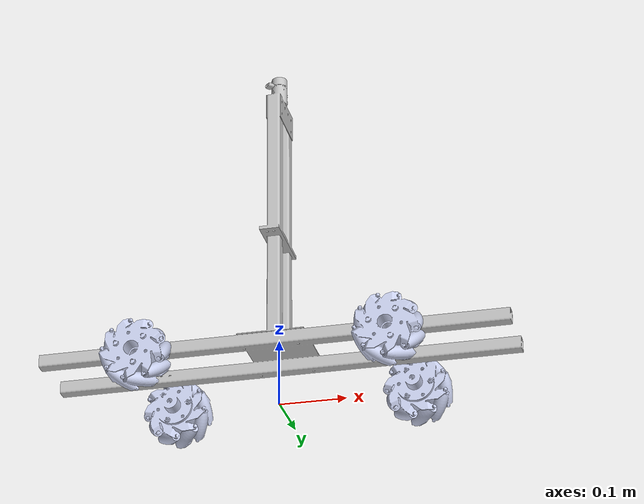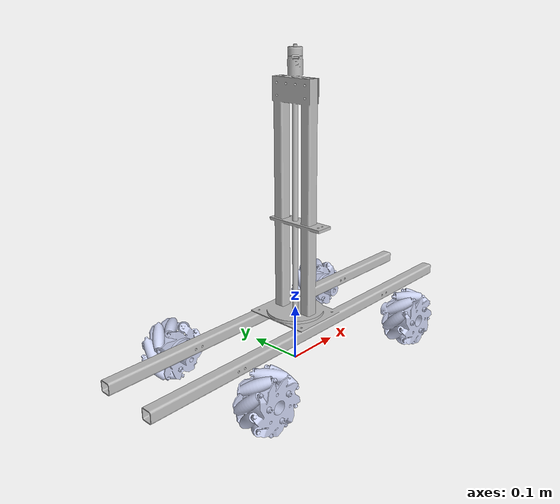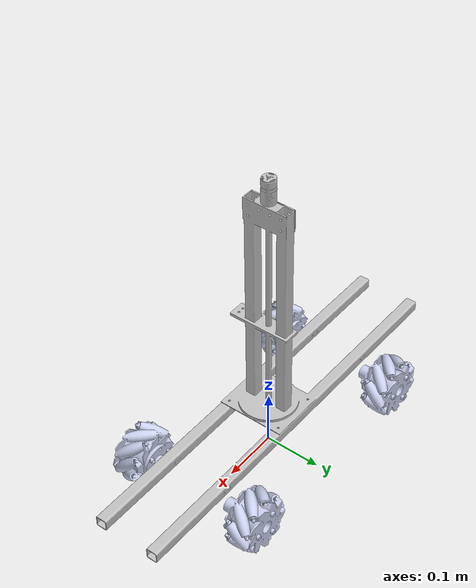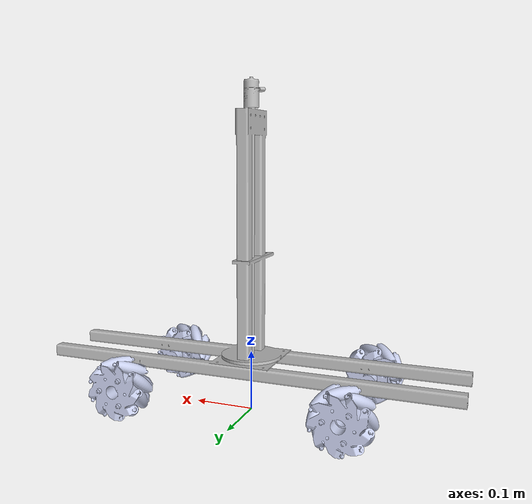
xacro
<?xml version="1.0" encoding="utf-8"?>
<robot
  name="chasis_urdf" xmlns:xacro="http://wiki.ros.org/xacro">
  <xacro:macro name="joint_trans" params="joint_name">
        <!-- Transmission is important to link the joints and the controller -->
        <transmission name="${joint_name}_trans">
            <type>transmission_interface/SimpleTransmission</type>
            <joint name="${joint_name}">
                <hardwareInterface>hardware_interface/VelocityJointInterface</hardwareInterface>
            </joint>
            <actuator name="${joint_name}_motor">
                <hardwareInterface>hardware_interface/VelocityJointInterface</hardwareInterface>
                <mechanicalReduction>1</mechanicalReduction>
            </actuator>
        </transmission>
    </xacro:macro>
  <link name="base_link">
    <inertial>
      <origin
        xyz="-1.59349319575341E-05 -0.000403198248937114 0.164884480228516"
        rpy="0 0 0" />
      <mass
        value="0.408631703851002" />
      <inertia
        ixx="0.00156695773909134"
        ixy="-1.72231405828274E-08"
        ixz="-1.91947046803438E-10"
        iyy="0.00754203792430675"
        iyz="-2.17504083896834E-10"
        izz="0.00612890873923272" />
    </inertial>
    <visual>
      <origin
        xyz="0 0 0"
        rpy="0 0 0" />
      <geometry>
        <mesh
          filename="package://chasis_urdf/meshes/base_link.STL" />
      </geometry>
      <material
        name="">
        <color
          rgba="0.752941176470588 0.752941176470588 0.752941176470588 1" />
      </material>
    </visual>
    <collision>
      <origin
        xyz="0 0 0"
        rpy="0 0 0" />
      <geometry>
        <mesh
          filename="package://chasis_urdf/meshes/base_link.STL" />
      </geometry>
    </collision>
  </link>
  <gazebo reference="base_link">
        <material>Gazebo/Gold</material>
    </gazebo>
  <link name="front_left">
    <inertial>
      <origin
        xyz="7.1456E-05 -0.020363 2.4702E-05"
        rpy="0 0 0" />
      <mass
        value="0.023929" />
      <inertia
        ixx="4.3974E-06"
        ixy="-1.4444E-08"
        ixz="4.4573E-09"
        iyy="6.347E-06"
        iyz="-4.9729E-09"
        izz="4.386E-06" />
    </inertial>
    <visual>
      <origin
        xyz="0 0 0"
        rpy="0 0 0" />
      <geometry>
        <mesh
          filename="package://chasis_urdf/meshes/front_left.STL" />
      </geometry>
      <material
        name="">
        <color
          rgba="0.79216 0.81961 0.93333 1" />
      </material>
    </visual>
    <collision>
      <origin
        xyz="0 0 0"
        rpy="0 0 0" />
      <geometry>
        <mesh
          filename="package://chasis_urdf/meshes/front_left.STL" />
      </geometry>
    </collision>
  </link>
  <gazebo reference="front_left">
        <material>Gazebo/Black</material>
    </gazebo>
  <joint  name="front_left"
    type="continuous">
    <origin
      xyz="0.18445 -0.0615 0.05"
      rpy="0 0 0" />
    <parent
      link="base_link" />
    <child
      link="front_left" />
    <axis
      xyz="0 -1 0" />
  </joint>
  <link name="front_right">
    <inertial>
      <origin
        xyz="7.4469E-05 -0.020363 1.3059E-05"
        rpy="0 0 0" />
      <mass
        value="0.023929" />
      <inertia
        ixx="4.3985E-06"
        ixy="-1.5049E-08"
        ixz="2.4507E-09"
        iyy="6.347E-06"
        iyz="-2.6199E-09"
        izz="4.3849E-06" />
    </inertial>
    <visual>
      <origin
        xyz="0 0 0"
        rpy="0 0 0" />
      <geometry>
        <mesh
          filename="package://chasis_urdf/meshes/front_right.STL" />
      </geometry>
      <material
        name="">
        <color
          rgba="0.79216 0.81961 0.93333 1" />
      </material>
    </visual>
    <collision>
      <origin
        xyz="0 0 0"
        rpy="0 0 0" />
      <geometry>
        <mesh
          filename="package://chasis_urdf/meshes/front_right.STL" />
      </geometry>
    </collision>
  </link>
  <gazebo reference="front_right">
        <material>Gazebo/Black</material>
    </gazebo>
  <joint  name="front_right"
    type="continuous">
    <origin
      xyz="-0.18445 -0.0615 0.05"
      rpy="0 0 0" />
    <parent
      link="base_link" />
    <child
      link="front_right" />
    <axis
      xyz="0 -1 0" />
  </joint>
  <link name="back_left">
    <inertial>
      <origin
        xyz="6.5483E-05 0.020363 -3.7823E-05"
        rpy="0 0 0" />
      <mass
        value="0.023929" />
      <inertia
        ixx="4.3953E-06"
        ixy="1.3227E-08"
        ixz="-6.3062E-09"
        iyy="6.3471E-06"
        iyz="-7.6362E-09"
        izz="4.3881E-06" />
    </inertial>
    <visual>
      <origin
        xyz="0 0 0"
        rpy="0 0 0" />
      <geometry>
        <mesh
          filename="package://chasis_urdf/meshes/back_left.STL" />
      </geometry>
      <material
        name="">
        <color
          rgba="0.79216 0.81961 0.93333 1" />
      </material>
    </visual>
    <collision>
      <origin
        xyz="0 0 0"
        rpy="0 0 0" />
      <geometry>
        <mesh
          filename="package://chasis_urdf/meshes/back_left.STL" />
      </geometry>
    </collision>
  </link>
  <gazebo reference="back_left">
        <material>Gazebo/Black</material>
    </gazebo>
  <joint  name="back_left"
    type="continuous">
    <origin
      xyz="0.18445 0.0615 0.05"
      rpy="0 0 0" />
    <parent
      link="base_link" />
    <child
      link="back_left" />
    <axis
      xyz="0 -1 0" />
  </joint>
  <link name="back_right">
    <inertial>
      <origin
        xyz="7.0522E-05 0.020363 -2.7281E-05"
        rpy="0 0 0" />
      <mass
        value="0.023928" />
      <inertia
        ixx="4.3969E-06"
        ixy="1.422E-08"
        ixz="-4.803E-09"
        iyy="6.347E-06"
        iyz="-5.5648E-09"
        izz="4.3863E-06" />
    </inertial>
    <visual>
      <origin
        xyz="0 0 0"
        rpy="0 0 0" />
      <geometry>
        <mesh
          filename="package://chasis_urdf/meshes/back_right.STL" />
      </geometry>
      <material
        name="">
        <color
          rgba="0.79216 0.81961 0.93333 1" />
      </material>
    </visual>
    <collision>
      <origin
        xyz="0 0 0"
        rpy="0 0 0" />
      <geometry>
        <mesh
          filename="package://chasis_urdf/meshes/back_right.STL" />
      </geometry>
    </collision>
  </link>
  <gazebo reference="back_right">
        <material>Gazebo/Black</material>
    </gazebo>
  <joint  name="back_right"
    type="continuous">
    <origin
      xyz="-0.18445 0.0615 0.05"
      rpy="0 0 0" />
    <parent
      link="base_link" />
    <child
      link="back_right" />
    <axis
      xyz="0 -1 0" />
  </joint>
  <xacro:joint_trans joint_name="front_left" />
  <xacro:joint_trans joint_name="front_right" />
  <xacro:joint_trans joint_name="back_left" />
  <xacro:joint_trans joint_name="back_right" />
  <gazebo>
        <plugin name="mecanum_controller" filename="libgazebo_ros_planar_move.so">
            <commandTopic>cmd_vel</commandTopic>
            <odometryTopic>odom</odometryTopic>
            <odometryFrame>odom</odometryFrame>
            <leftFrontJoint>back_left</leftFrontJoint>
            <rightFrontJoint>front_left</rightFrontJoint>
            <leftRearJoint>back_right</leftRearJoint>
            <rightRearJoint>front_right</rightRearJoint>
            <odometryRate>100</odometryRate>
            <robotBaseFrame>base_footprint</robotBaseFrame>
            <broadcastTF>1</broadcastTF>
        </plugin>
  </gazebo>
</robot>
